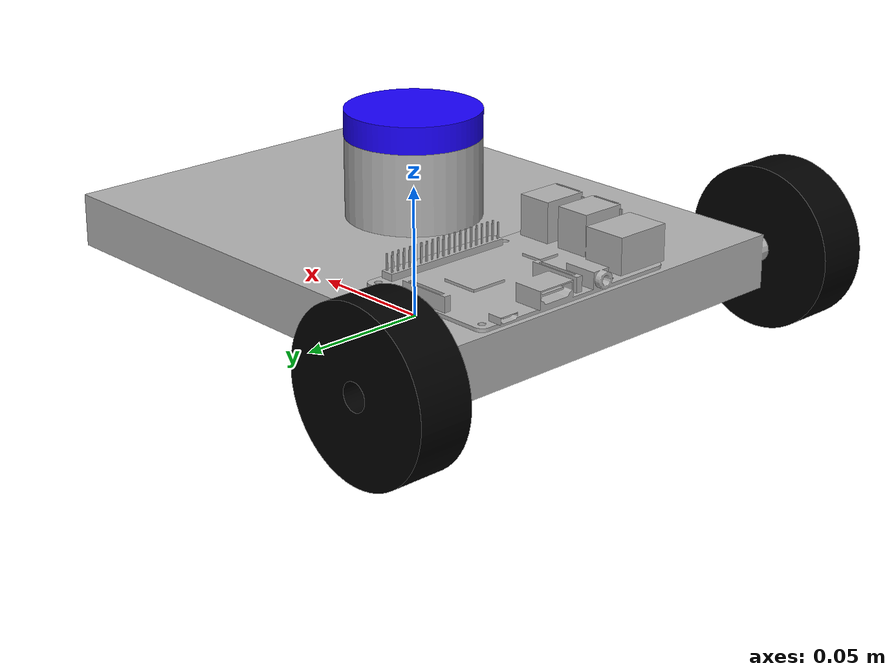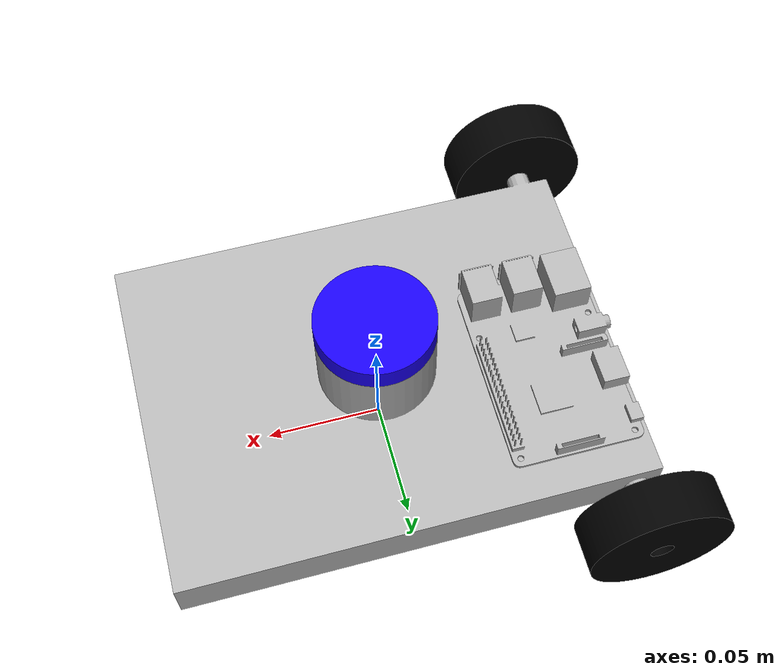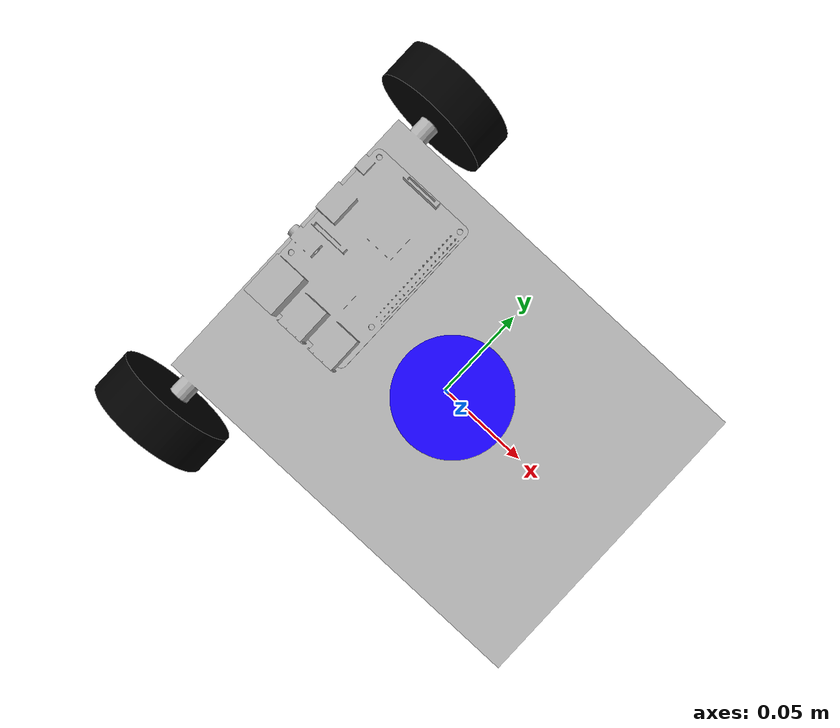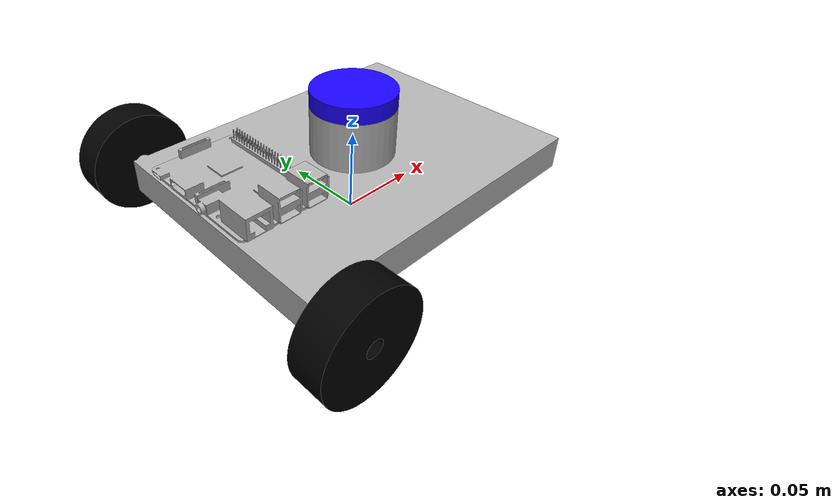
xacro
<?xml version="1.0" ?>
<robot name="navbot006" xmlns:xacro="http://www.ros.org/wiki/xacro">

<xacro:include filename="$(find navbot006_description)/urdf/materials.xacro" />
<xacro:include filename="$(find navbot006_description)/urdf/navbot006.trans" />
<xacro:include filename="$(find navbot006_description)/urdf/navbot006.gazebo" />
<link name="base_link">
  <inertial>
    <origin rpy="0 0 0" xyz="-0.000214045237661271 6.88514928563836e-17 0.03222963789389715"/>
    <mass value="0.7001041980964979"/>
    <inertia ixx="0.001274" ixy="-0.0" ixz="-0.0" iyy="0.002205" iyz="0.0" izz="0.003356"/>
  </inertial>
  <visual>
    <origin rpy="0 0 0" xyz="0 0 0"/>
    <geometry>
      <mesh filename="package://navbot006_description/meshes/base_link.stl" scale="0.001 0.001 0.001"/>
    </geometry>
    <material name="body_color"/>
  </visual>
  <collision>
    <origin rpy="0 0 0" xyz="0 0 0"/>
    <geometry>
      <mesh filename="package://navbot006_description/meshes/base_link.stl" scale="0.001 0.001 0.001"/>
    </geometry>
  </collision>
</link>

<link name="left_wheel_1">
  <inertial>
    <origin rpy="0 0 0" xyz="-1.491862189340054e-14 0.009999999999999912 0.0"/>
    <mass value="0.006597344572538555"/>
    <inertia ixx="2e-06" ixy="0.0" ixz="0.0" iyy="3e-06" iyz="0.0" izz="2e-06"/>
  </inertial>
  <visual>
    <origin rpy="0 0 0" xyz="0.09 -0.085 -0.03"/>
    <geometry>
      <mesh filename="package://navbot006_description/meshes/left_wheel_1.stl" scale="0.001 0.001 0.001"/>
    </geometry>
    <material name="black"/>
  </visual>
  <collision>
    <origin rpy="0 0 0" xyz="0.09 -0.085 -0.03"/>
    <geometry>
      <mesh filename="package://navbot006_description/meshes/left_wheel_1.stl" scale="0.001 0.001 0.001"/>
    </geometry>
  </collision>
</link>

<link name="right_wheel_1">
  <inertial>
    <origin rpy="0 0 0" xyz="-1.494637746901617e-14 -0.009999999999999926 0.0"/>
    <mass value="0.006597344572538555"/>
    <inertia ixx="2e-06" ixy="0.0" ixz="0.0" iyy="3e-06" iyz="0.0" izz="2e-06"/>
  </inertial>
  <visual>
    <origin rpy="0 0 0" xyz="0.09 0.085 -0.03"/>
    <geometry>
      <mesh filename="package://navbot006_description/meshes/right_wheel_1.stl" scale="0.001 0.001 0.001"/>
    </geometry>
    <material name="black"/>
  </visual>
  <collision>
    <origin rpy="0 0 0" xyz="0.09 0.085 -0.03"/>
    <geometry>
      <mesh filename="package://navbot006_description/meshes/right_wheel_1.stl" scale="0.001 0.001 0.001"/>
    </geometry>
  </collision>
</link>

<link name="lidar_top_1">
  <inertial>
    <origin rpy="0 0 0" xyz="-3.618764437576268e-18 -7.237528875152536e-18 0.0050000000000000044"/>
    <mass value="0.1541343895667492"/>
    <inertia ixx="2.5e-05" ixy="-0.0" ixz="-0.0" iyy="2.5e-05" iyz="-0.0" izz="4.8e-05"/>
  </inertial>
  <visual>
    <origin rpy="0 0 0" xyz="-0.0 -0.0 -0.07"/>
    <geometry>
      <mesh filename="package://navbot006_description/meshes/lidar_top_1.stl" scale="0.001 0.001 0.001"/>
    </geometry>
    <material name="blue"/>
  </visual>
  <collision>
    <origin rpy="0 0 0" xyz="-0.0 -0.0 -0.07"/>
    <geometry>
      <mesh filename="package://navbot006_description/meshes/lidar_top_1.stl" scale="0.001 0.001 0.001"/>
    </geometry>
  </collision>
</link>

<link name="castor_w_1">
  <inertial>
    <origin rpy="0 0 0" xyz="-0.020000000000627446 8.03980839710679e-17 -0.008499999999999982"/>
    <mass value="0.005550147021341895"/>
    <inertia ixx="0.0" ixy="0.0" ixz="0.0" iyy="0.0" iyz="-0.0" izz="0.0"/>
  </inertial>
  <visual>
    <origin rpy="0 0 0" xyz="-0.1 -0.0 -0.02"/>
    <geometry>
      <mesh filename="package://navbot006_description/meshes/castor_w_1.stl" scale="0.001 0.001 0.001"/>
    </geometry>
    <material name="body_color"/>
  </visual>
  <collision>
    <origin rpy="0 0 0" xyz="-0.1 -0.0 -0.02"/>
    <geometry>
      <mesh filename="package://navbot006_description/meshes/castor_w_1.stl" scale="0.001 0.001 0.001"/>
    </geometry>
  </collision>
</link>

<link name="rasp_pi__1__1">
  <inertial>
    <origin rpy="0 0 0" xyz="0.028745991634913592 0.002534527480267408 0.004888830680916854"/>
    <mass value="0.13472167579144473"/>
    <inertia ixx="8.3e-05" ixy="0.0" ixz="0.0" iyy="4.1e-05" iyz="9e-06" izz="0.000118"/>
  </inertial>
  <visual>
    <origin rpy="0 0 0" xyz="0.1 -0.0 -0.04"/>
    <geometry>
      <mesh filename="package://navbot006_description/meshes/rasp_pi__1__1.stl" scale="0.001 0.001 0.001"/>
    </geometry>
    <material name="body_color"/>
  </visual>
  <collision>
    <origin rpy="0 0 0" xyz="0.1 -0.0 -0.04"/>
    <geometry>
      <mesh filename="package://navbot006_description/meshes/rasp_pi__1__1.stl" scale="0.001 0.001 0.001"/>
    </geometry>
  </collision>
</link>

<joint name="left_joint" type="continuous">
  <origin rpy="0 0 0" xyz="-0.09 0.085 0.03"/>
  <parent link="base_link"/>
  <child link="left_wheel_1"/>
  <axis xyz="0.0 1.0 0.0"/>
</joint>

<joint name="right_joint" type="continuous">
  <origin rpy="0 0 0" xyz="-0.09 -0.085 0.03"/>
  <parent link="base_link"/>
  <child link="right_wheel_1"/>
  <axis xyz="0.0 1.0 0.0"/>
</joint>

<joint name="Rigid8" type="fixed">
  <origin rpy="0 0 0" xyz="0.0 0.0 0.07"/>
  <parent link="base_link"/>
  <child link="lidar_top_1"/>
</joint>

<joint name="Rigid9" type="fixed">
  <origin rpy="0 0 0" xyz="0.1 0.0 0.02"/>
  <parent link="base_link"/>
  <child link="castor_w_1"/>
</joint>

<joint name="Rigid10" type="fixed">
  <origin rpy="0 0 0" xyz="-0.1 0.0 0.04"/>
  <parent link="base_link"/>
  <child link="rasp_pi__1__1"/>
</joint>

</robot>

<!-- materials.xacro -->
<robot name="navbot006" xmlns:xacro="http://www.ros.org/wiki/xacro" >

  <material name="body_color">
    <color rgba="0.700 0.700 0.700 1.000"/>
  </material>

  <material name="gold">
    <color rgba="1.000 0.750 0.100 1.000"/>
  </material>

  <material name="black">
    <color rgba="0.000 0.000 0.000 1.000"/>
  </material>

  <material name="green">
    <color rgba="0.0 0.8 0.0 1.0"/>
  </material>

  <material name="grey">
    <color rgba="0.2 0.2 0.2 1.0"/>
  </material>

  <material name="orange">
    <color rgba="${255/255} ${108/255} ${10/255} 1.0"/>
  </material>

  <material name="brown">
    <color rgba="${222/255} ${207/255} ${195/255} 1.0"/>
  </material>

  <material name="red">
    <color rgba="0.8 0.0 0.0 1.0"/>
  </material>

  <material name="white">
    <color rgba="1.0 1.0 1.0 1.0"/>
  </material>

  <material name="blue">
    <color rgba="0.1 0.0 1.0 1.0"/>
  </material>

</robot>

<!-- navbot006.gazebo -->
<robot name="navbot006" xmlns:xacro="http://www.ros.org/wiki/xacro" >

<xacro:property name="body_color" value="Gazebo/Silver" />

<xacro:property name="black" value="Gazebo/Black" />

<xacro:property name="gold" value="Gazebo/Gold" />

<xacro:property name="red" value="Gazebo/Red" />

<gazebo>
  <plugin filename="libgazebo_ros_control.so" name="control"/>
</gazebo>
<gazebo reference="base_link">
  <material>${body_color}</material>
  <mu1>0.2</mu1>
  <mu2>0.2</mu2>
  <selfCollide>true</selfCollide>
  <gravity>true</gravity>
</gazebo>

<gazebo reference="left_wheel_1">
  <material>${black}</material>
  <mu1>100</mu1>
  <mu2>100</mu2>
  <selfCollide>true</selfCollide>
</gazebo>

<gazebo reference="right_wheel_1">
  <material>${black}</material>
  <mu1>100</mu1>
  <mu2>100</mu2>
  <selfCollide>true</selfCollide>
</gazebo>

<gazebo reference="lidar_top_1">
  <material>${red}</material>
  <mu1>0.2</mu1>
  <mu2>0.2</mu2>
  <selfCollide>true</selfCollide>
</gazebo>

<gazebo reference="castor_w_1">
  <material>${gold}</material>
  <mu1>0.2</mu1>
  <mu2>0.2</mu2>
  <selfCollide>true</selfCollide>
</gazebo>
<gazebo>
<plugin name="differential_drive_controller" filename="libgazebo_ros_diff_drive.so">
    <!-- Plugin update rate in Hz -->
    <updateRate>100</updateRate>

    <!-- Name of left joint, defaults to `left_joint` -->
    <leftJoint>left_joint</leftJoint>

    <!-- Name of right joint, defaults to `right_joint` -->
    <rightJoint>right_joint</rightJoint>

    <!-- The distance from the center of one wheel to the other, in meters, defaults to 0.34 m -->
    <wheelSeparation>0.19</wheelSeparation>

    <!-- Diameter of the wheels, in meters, defaults to 0.15 m -->
    <wheelDiameter>0.06</wheelDiameter>

    <!-- Wheel acceleration, in rad/s^2, defaults to 0.0 rad/s^2 -->
    <wheelAcceleration>1.0</wheelAcceleration>

    <!-- Maximum torque which the wheels can produce, in Nm, defaults to 5 Nm -->
    <wheelTorque>50</wheelTorque>

    <!-- Topic to receive geometry_msgs/Twist message commands, defaults to `cmd_vel` -->
    <commandTopic>cmd_vel</commandTopic>

    <!-- Topic to publish nav_msgs/Odometry messages, defaults to `odom` -->
    <odometryTopic>odom</odometryTopic>

    <!-- Odometry frame, defaults to `odom` -->
    <odometryFrame>odom</odometryFrame>

    <!-- Robot frame to calculate odometry from, defaults to `base_footprint` -->
    <robotBaseFrame>base_link</robotBaseFrame>

    <!-- Odometry source, 0 for ENCODER, 1 for WORLD, defaults to WORLD -->
    <odometrySource>1</odometrySource>

    <!-- Set to true to publish transforms for the wheel links, defaults to false -->
    <publishWheelTF>true</publishWheelTF>

    <!-- Set to true to publish transforms for the odometry, defaults to true -->
    <publishOdom>true</publishOdom>

    <!-- Set to true to publish sensor_msgs/JointState on /joint_states for the wheel joints, defaults to false -->
    <publishWheelJointState>true</publishWheelJointState>

    <!-- Set to true to swap right and left wheels, defaults to true -->
    <legacyMode>false</legacyMode>
  </plugin>
</gazebo>

<!-- hokuyo -->
  <gazebo reference="lidar_top_1">
    <sensor type="gpu_ray" name="rplidar_n1">
      <pose>0 0 0 0 0 0</pose>
      <visualize>true</visualize>
      <update_rate>20</update_rate>
      <ray>
        <scan>
          <horizontal>
            <samples>720</samples>
            <resolution>1</resolution>
            <min_angle>-3.142</min_angle>
            <max_angle>3.142</max_angle>
          </horizontal>
        </scan>
        <range>
          <min>0.10</min>
          <max>30.0</max>
          <resolution>0.01</resolution>
        </range>
        <noise>
          <type>gaussian</type>
          <mean>0.0</mean>
          <stddev>0.01</stddev>
        </noise>
      </ray>
      <plugin name="gazebo_ros_head_hokuyo_controller" filename="libgazebo_ros_gpu_laser.so">
        <topicName>/scan</topicName>
        <frameName>lidar_top_1</frameName>
      </plugin>
    </sensor>
  </gazebo>

</robot>
